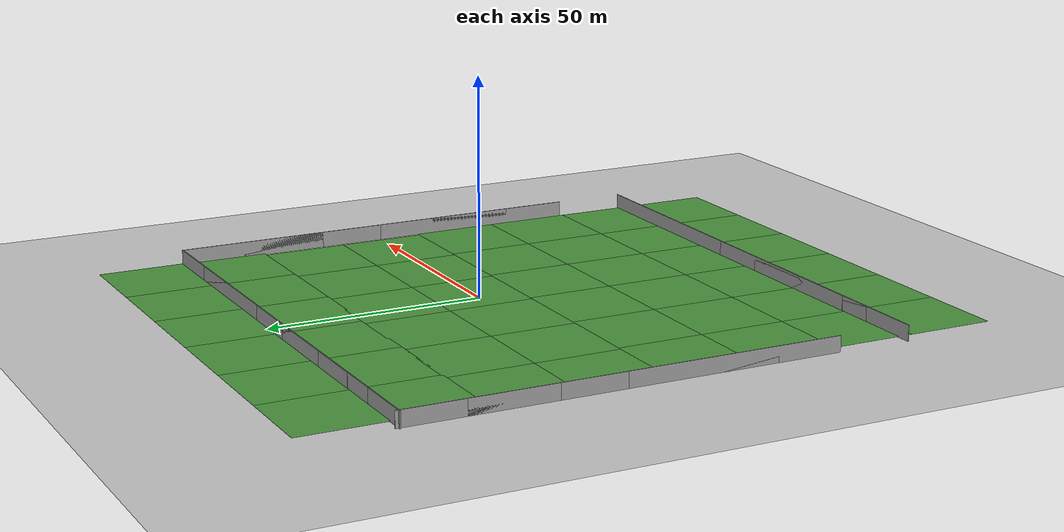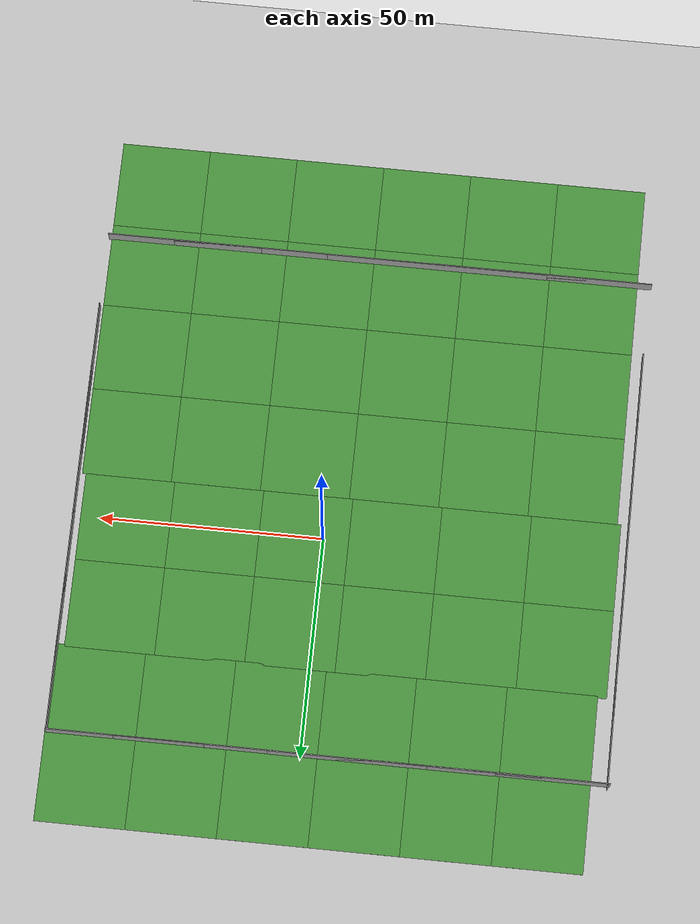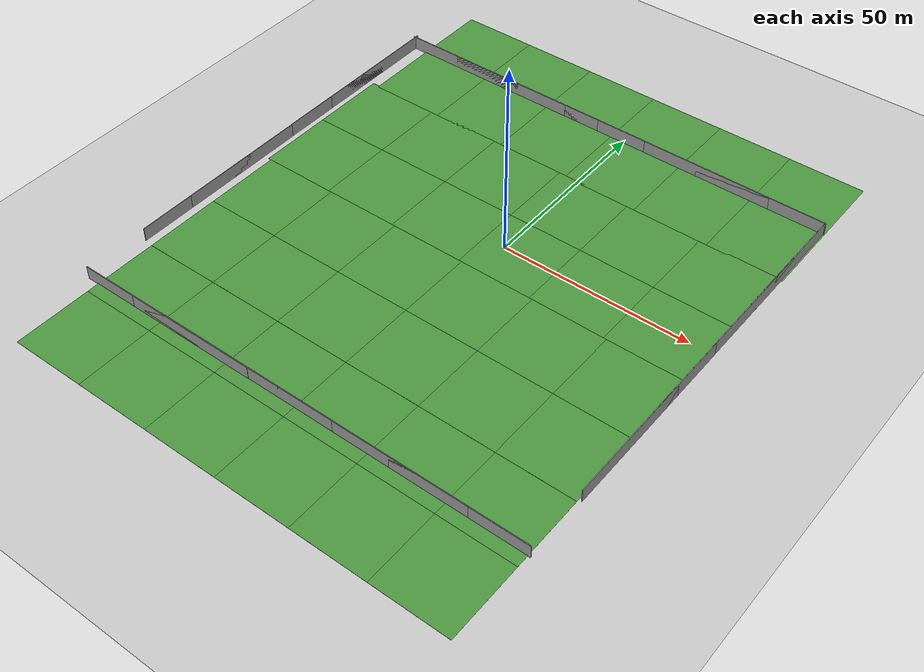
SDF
<sdf version="1.7">
 <world name="default">
  <plugin name="ros_interface_plugin" filename="librotors_gazebo_ros_interface_plugin.so"/>
  <light name="sun" type="directional">
   <pose>0 0 10 0 -0 0</pose>
   <diffuse>0.8 0.8 0.8 1</diffuse>
   <specular>0.2 0.2 0.2 1</specular>
   <attenuation>
    <range>1000</range>
    <constant>0.9</constant>
    <linear>0.01</linear>
    <quadratic>0.001</quadratic>
   </attenuation>
   <direction>-0.5 0.1 -0.9</direction>
   <spot><inner_angle>0</inner_angle><outer_angle>0</outer_angle><falloff>0</falloff></spot>
  </light>
  <model name="ground_plane">
   <static>1</static>
   <link name="link">
    <collision name="collision">
     <geometry><plane><normal>0 0 1</normal><size>100 100</size></plane></geometry>
     <surface><friction><ode><mu>100</mu><mu2>50</mu2></ode></friction></surface>
    </collision>
    <visual name="visual">
     <cast_shadows>0</cast_shadows>
     <geometry><plane><normal>0 0 1</normal><size>100 100</size></plane></geometry>
     <material>
      <script><uri>file://media/materials/scripts/gazebo.material</uri><name>Gazebo/Grey</name></script>
     </material>
    </visual>
    <velocity_decay><linear>0</linear><angular>0</angular></velocity_decay>
   </link>
  </model>
  <physics name="default_physics" default="0" type="ode">
   <max_step_size>0.001</max_step_size>
   <real_time_factor>1</real_time_factor>
   <real_time_update_rate>1000</real_time_update_rate>
  </physics>
  <scene><ambient>0.4 0.4 0.4 1</ambient><background>0.7 0.7 0.7 1</background><shadows>1</shadows></scene>
  <gravity>0 0 -9.8</gravity>
  <magnetic_field>6e-06 2.3e-05 -4.2e-05</magnetic_field>
  <atmosphere type="adiabatic"/>
  <spherical_coordinates>
   <surface_model>EARTH_WGS84</surface_model>
   <latitude_deg>0</latitude_deg>
   <longitude_deg>0</longitude_deg>
   <elevation>0</elevation>
   <heading_deg>0</heading_deg>
  </spherical_coordinates>
  <model name="wall">
   <link name="link">
    <pose>0 0 1.4 0 -0 0</pose>
    <inertial>
     <mass>1</mass>
     <inertia><ixx>1</ixx><ixy>0</ixy><ixz>0</ixz><iyy>1</iyy><iyz>0</iyz><izz>1</izz></inertia>
    </inertial>
    <visual name="ModelPreview_1::link::visual_1">
     <cast_shadows>0</cast_shadows>
     <geometry><box><size>20 0.2 4</size></box></geometry>
     <material>
      <script>
       <uri>model://grey_wall/materials/scripts</uri>
       <uri>model://grey_wall/materials/textures</uri>
       <name>vrc/grey_wall</name>
      </script>
      <ambient>1 1 1 1</ambient>
      <diffuse>1 1 1 1</diffuse>
      <specular>0 0 0 1</specular>
      <emissive>0 0 0 1</emissive>
      <shader type="vertex"><normal_map>__default__</normal_map></shader>
     </material>
    </visual>
    <visual name="visual">
     <cast_shadows>0</cast_shadows>
     <geometry><box><size>50 0.2 4</size></box></geometry>
     <material>
      <script>
       <uri>model://grey_wall/materials/scripts</uri>
       <uri>model://grey_wall/materials/textures</uri>
       <name>vrc/grey_wall</name>
      </script>
      <ambient>1 1 1 1</ambient>
      <diffuse>1 1 1 1</diffuse>
      <specular>0 0 0 1</specular>
      <emissive>0 0 0 1</emissive>
      <shader type="vertex"><normal_map>__default__</normal_map></shader>
     </material>
    </visual>
    <collision name="collision">
     <geometry><box><size>50 0.2 4</size></box></geometry>
     <surface>
      <friction>
       <ode><mu>1</mu><mu2>1</mu2><fdir1>0 0 0</fdir1><slip1>0</slip1><slip2>0</slip2></ode>
       <torsional>
        <coefficient>1</coefficient>
        <patch_radius>0</patch_radius>
        <surface_radius>0</surface_radius>
        <use_patch_radius>1</use_patch_radius>
        <ode><slip>0</slip></ode>
       </torsional>
      </friction>
      <bounce><restitution_coefficient>0</restitution_coefficient><threshold>1e+06</threshold></bounce>
      <contact>
       <collide_without_contact>0</collide_without_contact>
       <collide_without_contact_bitmask>1</collide_without_contact_bitmask>
       <collide_bitmask>1</collide_bitmask>
       <ode>
        <soft_cfm>0</soft_cfm>
        <soft_erp>0.2</soft_erp>
        <kp>1e+13</kp>
        <kd>1</kd>
        <max_vel>0.01</max_vel>
        <min_depth>0</min_depth>
       </ode>
       <bullet>
        <split_impulse>1</split_impulse>
        <split_impulse_penetration_threshold>-0.01</split_impulse_penetration_threshold>
        <soft_cfm>0</soft_cfm>
        <soft_erp>0.2</soft_erp>
        <kp>1e+13</kp>
        <kd>1</kd>
       </bullet>
      </contact>
     </surface>
    </collision>
   </link>
   <static>1</static>
   <pose>-19.1389 -66.0465 0 0 -0 0</pose>
  </model>
  <model name="wall_clone">
   <link name="link">
    <pose>0 0 1.4 0 -0 0</pose>
    <inertial>
     <mass>1</mass>
     <inertia><ixx>1</ixx><ixy>0</ixy><ixz>0</ixz><iyy>1</iyy><iyz>0</iyz><izz>1</izz></inertia>
    </inertial>
    <visual name="ModelPreview_1::link::visual_1">
     <cast_shadows>0</cast_shadows>
     <geometry><box><size>20 0.2 4</size></box></geometry>
     <material>
      <script>
       <uri>model://grey_wall/materials/scripts</uri>
       <uri>model://grey_wall/materials/textures</uri>
       <name>vrc/grey_wall</name>
      </script>
      <ambient>1 1 1 1</ambient>
      <diffuse>1 1 1 1</diffuse>
      <specular>0 0 0 1</specular>
      <emissive>0 0 0 1</emissive>
      <shader type="vertex"><normal_map>__default__</normal_map></shader>
     </material>
    </visual>
    <visual name="visual">
     <cast_shadows>0</cast_shadows>
     <geometry><box><size>50 0.2 4</size></box></geometry>
     <material>
      <script>
       <uri>model://grey_wall/materials/scripts</uri>
       <uri>model://grey_wall/materials/textures</uri>
       <name>vrc/grey_wall</name>
      </script>
      <ambient>1 1 1 1</ambient>
      <diffuse>1 1 1 1</diffuse>
      <specular>0 0 0 1</specular>
      <emissive>0 0 0 1</emissive>
      <shader type="vertex"><normal_map>__default__</normal_map></shader>
     </material>
    </visual>
    <collision name="collision">
     <geometry><box><size>50 0.2 4</size></box></geometry>
     <surface>
      <friction>
       <ode><mu>1</mu><mu2>1</mu2><fdir1>0 0 0</fdir1><slip1>0</slip1><slip2>0</slip2></ode>
       <torsional>
        <coefficient>1</coefficient>
        <patch_radius>0</patch_radius>
        <surface_radius>0</surface_radius>
        <use_patch_radius>1</use_patch_radius>
        <ode><slip>0</slip></ode>
       </torsional>
      </friction>
      <bounce><restitution_coefficient>0</restitution_coefficient><threshold>1e+06</threshold></bounce>
      <contact>
       <collide_without_contact>0</collide_without_contact>
       <collide_without_contact_bitmask>1</collide_without_contact_bitmask>
       <collide_bitmask>1</collide_bitmask>
       <ode>
        <soft_cfm>0</soft_cfm>
        <soft_erp>0.2</soft_erp>
        <kp>1e+13</kp>
        <kd>1</kd>
        <max_vel>0.01</max_vel>
        <min_depth>0</min_depth>
       </ode>
       <bullet>
        <split_impulse>1</split_impulse>
        <split_impulse_penetration_threshold>-0.01</split_impulse_penetration_threshold>
        <soft_cfm>0</soft_cfm>
        <soft_erp>0.2</soft_erp>
        <kp>1e+13</kp>
        <kd>1</kd>
       </bullet>
      </contact>
     </surface>
    </collision>
   </link>
   <static>1</static>
   <pose>-42.9816 -66.1254 0 0 -0 0</pose>
  </model>
  <model name="wall_clone_0">
   <link name="link">
    <pose>0 0 1.4 0 -0 0</pose>
    <inertial>
     <mass>1</mass>
     <inertia><ixx>1</ixx><ixy>0</ixy><ixz>0</ixz><iyy>1</iyy><iyz>0</iyz><izz>1</izz></inertia>
    </inertial>
    <visual name="ModelPreview_1::link::visual_1">
     <cast_shadows>0</cast_shadows>
     <geometry><box><size>20 0.2 4</size></box></geometry>
     <material>
      <script>
       <uri>model://grey_wall/materials/scripts</uri>
       <uri>model://grey_wall/materials/textures</uri>
       <name>vrc/grey_wall</name>
      </script>
      <ambient>1 1 1 1</ambient>
      <diffuse>1 1 1 1</diffuse>
      <specular>0 0 0 1</specular>
      <emissive>0 0 0 1</emissive>
      <shader type="vertex"><normal_map>__default__</normal_map></shader>
     </material>
    </visual>
    <visual name="visual">
     <cast_shadows>0</cast_shadows>
     <geometry><box><size>50 0.2 4</size></box></geometry>
     <material>
      <script>
       <uri>model://grey_wall/materials/scripts</uri>
       <uri>model://grey_wall/materials/textures</uri>
       <name>vrc/grey_wall</name>
      </script>
      <ambient>1 1 1 1</ambient>
      <diffuse>1 1 1 1</diffuse>
      <specular>0 0 0 1</specular>
      <emissive>0 0 0 1</emissive>
      <shader type="vertex"><normal_map>__default__</normal_map></shader>
     </material>
    </visual>
    <collision name="collision">
     <geometry><box><size>50 0.2 4</size></box></geometry>
     <surface>
      <friction>
       <ode><mu>1</mu><mu2>1</mu2><fdir1>0 0 0</fdir1><slip1>0</slip1><slip2>0</slip2></ode>
       <torsional>
        <coefficient>1</coefficient>
        <patch_radius>0</patch_radius>
        <surface_radius>0</surface_radius>
        <use_patch_radius>1</use_patch_radius>
        <ode><slip>0</slip></ode>
       </torsional>
      </friction>
      <bounce><restitution_coefficient>0</restitution_coefficient><threshold>1e+06</threshold></bounce>
      <contact>
       <collide_without_contact>0</collide_without_contact>
       <collide_without_contact_bitmask>1</collide_without_contact_bitmask>
       <collide_bitmask>1</collide_bitmask>
       <ode>
        <soft_cfm>0</soft_cfm>
        <soft_erp>0.2</soft_erp>
        <kp>1e+13</kp>
        <kd>1</kd>
        <max_vel>0.01</max_vel>
        <min_depth>0</min_depth>
       </ode>
       <bullet>
        <split_impulse>1</split_impulse>
        <split_impulse_penetration_threshold>-0.01</split_impulse_penetration_threshold>
        <soft_cfm>0</soft_cfm>
        <soft_erp>0.2</soft_erp>
        <kp>1e+13</kp>
        <kd>1</kd>
       </bullet>
      </contact>
     </surface>
    </collision>
   </link>
   <static>1</static>
   <pose>30.7671 -66.0696 0 0 -0 0</pose>
  </model>
  <model name="wall_clone_0_clone">
   <link name="link">
    <pose>0 0 1.4 0 -0 0</pose>
    <inertial>
     <mass>1</mass>
     <inertia><ixx>1</ixx><ixy>0</ixy><ixz>0</ixz><iyy>1</iyy><iyz>0</iyz><izz>1</izz></inertia>
    </inertial>
    <visual name="ModelPreview_1::link::visual_1">
     <cast_shadows>0</cast_shadows>
     <geometry><box><size>20 0.2 4</size></box></geometry>
     <material>
      <script>
       <uri>model://grey_wall/materials/scripts</uri>
       <uri>model://grey_wall/materials/textures</uri>
       <name>vrc/grey_wall</name>
      </script>
      <ambient>1 1 1 1</ambient>
      <diffuse>1 1 1 1</diffuse>
      <specular>0 0 0 1</specular>
      <emissive>0 0 0 1</emissive>
      <shader type="vertex"><normal_map>__default__</normal_map></shader>
     </material>
    </visual>
    <visual name="visual">
     <cast_shadows>0</cast_shadows>
     <geometry><box><size>50 0.2 4</size></box></geometry>
     <material>
      <script>
       <uri>model://grey_wall/materials/scripts</uri>
       <uri>model://grey_wall/materials/textures</uri>
       <name>vrc/grey_wall</name>
      </script>
      <ambient>1 1 1 1</ambient>
      <diffuse>1 1 1 1</diffuse>
      <specular>0 0 0 1</specular>
      <emissive>0 0 0 1</emissive>
      <shader type="vertex"><normal_map>__default__</normal_map></shader>
     </material>
    </visual>
    <collision name="collision">
     <geometry><box><size>50 0.2 4</size></box></geometry>
     <surface>
      <friction>
       <ode><mu>1</mu><mu2>1</mu2><fdir1>0 0 0</fdir1><slip1>0</slip1><slip2>0</slip2></ode>
       <torsional>
        <coefficient>1</coefficient>
        <patch_radius>0</patch_radius>
        <surface_radius>0</surface_radius>
        <use_patch_radius>1</use_patch_radius>
        <ode><slip>0</slip></ode>
       </torsional>
      </friction>
      <bounce><restitution_coefficient>0</restitution_coefficient><threshold>1e+06</threshold></bounce>
      <contact>
       <collide_without_contact>0</collide_without_contact>
       <collide_without_contact_bitmask>1</collide_without_contact_bitmask>
       <collide_bitmask>1</collide_bitmask>
       <ode>
        <soft_cfm>0</soft_cfm>
        <soft_erp>0.2</soft_erp>
        <kp>1e+13</kp>
        <kd>1</kd>
        <max_vel>0.01</max_vel>
        <min_depth>0</min_depth>
       </ode>
       <bullet>
        <split_impulse>1</split_impulse>
        <split_impulse_penetration_threshold>-0.01</split_impulse_penetration_threshold>
        <soft_cfm>0</soft_cfm>
        <soft_erp>0.2</soft_erp>
        <kp>1e+13</kp>
        <kd>1</kd>
       </bullet>
      </contact>
     </surface>
    </collision>
   </link>
   <static>1</static>
   <pose>55.8293 -24.385 0 0 -0 1.57</pose>
  </model>
  <model name="wall_clone_0_clone_clone">
   <link name="link">
    <pose>0 0 1.4 0 -0 0</pose>
    <inertial>
     <mass>1</mass>
     <inertia><ixx>1</ixx><ixy>0</ixy><ixz>0</ixz><iyy>1</iyy><iyz>0</iyz><izz>1</izz></inertia>
    </inertial>
    <visual name="ModelPreview_1::link::visual_1">
     <cast_shadows>0</cast_shadows>
     <geometry><box><size>20 0.2 4</size></box></geometry>
     <material>
      <script>
       <uri>model://grey_wall/materials/scripts</uri>
       <uri>model://grey_wall/materials/textures</uri>
       <name>vrc/grey_wall</name>
      </script>
      <ambient>1 1 1 1</ambient>
      <diffuse>1 1 1 1</diffuse>
      <specular>0 0 0 1</specular>
      <emissive>0 0 0 1</emissive>
      <shader type="vertex"><normal_map>__default__</normal_map></shader>
     </material>
    </visual>
    <visual name="visual">
     <cast_shadows>0</cast_shadows>
     <geometry><box><size>50 0.2 4</size></box></geometry>
     <material>
      <script>
       <uri>model://grey_wall/materials/scripts</uri>
       <uri>model://grey_wall/materials/textures</uri>
       <name>vrc/grey_wall</name>
      </script>
      <ambient>1 1 1 1</ambient>
      <diffuse>1 1 1 1</diffuse>
      <specular>0 0 0 1</specular>
      <emissive>0 0 0 1</emissive>
      <shader type="vertex"><normal_map>__default__</normal_map></shader>
     </material>
    </visual>
    <collision name="collision">
     <geometry><box><size>50 0.2 4</size></box></geometry>
     <surface>
      <friction>
       <ode><mu>1</mu><mu2>1</mu2><fdir1>0 0 0</fdir1><slip1>0</slip1><slip2>0</slip2></ode>
       <torsional>
        <coefficient>1</coefficient>
        <patch_radius>0</patch_radius>
        <surface_radius>0</surface_radius>
        <use_patch_radius>1</use_patch_radius>
        <ode><slip>0</slip></ode>
       </torsional>
      </friction>
      <bounce><restitution_coefficient>0</restitution_coefficient><threshold>1e+06</threshold></bounce>
      <contact>
       <collide_without_contact>0</collide_without_contact>
       <collide_without_contact_bitmask>1</collide_without_contact_bitmask>
       <collide_bitmask>1</collide_bitmask>
       <ode>
        <soft_cfm>0</soft_cfm>
        <soft_erp>0.2</soft_erp>
        <kp>1e+13</kp>
        <kd>1</kd>
        <max_vel>0.01</max_vel>
        <min_depth>0</min_depth>
       </ode>
       <bullet>
        <split_impulse>1</split_impulse>
        <split_impulse_penetration_threshold>-0.01</split_impulse_penetration_threshold>
        <soft_cfm>0</soft_cfm>
        <soft_erp>0.2</soft_erp>
        <kp>1e+13</kp>
        <kd>1</kd>
       </bullet>
      </contact>
     </surface>
    </collision>
   </link>
   <static>1</static>
   <pose>55.8454 24.5096 0 0 -0 1.57</pose>
  </model>
  <model name="wall_clone_0_clone_clone_0">
   <link name="link">
    <pose>0 0 1.4 0 -0 0</pose>
    <inertial>
     <mass>1</mass>
     <inertia><ixx>1</ixx><ixy>0</ixy><ixz>0</ixz><iyy>1</iyy><iyz>0</iyz><izz>1</izz></inertia>
    </inertial>
    <visual name="ModelPreview_1::link::visual_1">
     <cast_shadows>0</cast_shadows>
     <geometry><box><size>20 0.2 4</size></box></geometry>
     <material>
      <script>
       <uri>model://grey_wall/materials/scripts</uri>
       <uri>model://grey_wall/materials/textures</uri>
       <name>vrc/grey_wall</name>
      </script>
      <ambient>1 1 1 1</ambient>
      <diffuse>1 1 1 1</diffuse>
      <specular>0 0 0 1</specular>
      <emissive>0 0 0 1</emissive>
      <shader type="vertex"><normal_map>__default__</normal_map></shader>
     </material>
    </visual>
    <visual name="visual">
     <cast_shadows>0</cast_shadows>
     <geometry><box><size>50 0.2 4</size></box></geometry>
     <material>
      <script>
       <uri>model://grey_wall/materials/scripts</uri>
       <uri>model://grey_wall/materials/textures</uri>
       <name>vrc/grey_wall</name>
      </script>
      <ambient>1 1 1 1</ambient>
      <diffuse>1 1 1 1</diffuse>
      <specular>0 0 0 1</specular>
      <emissive>0 0 0 1</emissive>
      <shader type="vertex"><normal_map>__default__</normal_map></shader>
     </material>
    </visual>
    <collision name="collision">
     <geometry><box><size>50 0.2 4</size></box></geometry>
     <surface>
      <friction>
       <ode><mu>1</mu><mu2>1</mu2><fdir1>0 0 0</fdir1><slip1>0</slip1><slip2>0</slip2></ode>
       <torsional>
        <coefficient>1</coefficient>
        <patch_radius>0</patch_radius>
        <surface_radius>0</surface_radius>
        <use_patch_radius>1</use_patch_radius>
        <ode><slip>0</slip></ode>
       </torsional>
      </friction>
      <bounce><restitution_coefficient>0</restitution_coefficient><threshold>1e+06</threshold></bounce>
      <contact>
       <collide_without_contact>0</collide_without_contact>
       <collide_without_contact_bitmask>1</collide_without_contact_bitmask>
       <collide_bitmask>1</collide_bitmask>
       <ode>
        <soft_cfm>0</soft_cfm>
        <soft_erp>0.2</soft_erp>
        <kp>1e+13</kp>
        <kd>1</kd>
        <max_vel>0.01</max_vel>
        <min_depth>0</min_depth>
       </ode>
       <bullet>
        <split_impulse>1</split_impulse>
        <split_impulse_penetration_threshold>-0.01</split_impulse_penetration_threshold>
        <soft_cfm>0</soft_cfm>
        <soft_erp>0.2</soft_erp>
        <kp>1e+13</kp>
        <kd>1</kd>
       </bullet>
      </contact>
     </surface>
    </collision>
   </link>
   <static>1</static>
   <pose>-67.2984 -24.5457 0 0 -0 1.57</pose>
  </model>
  <model name="wall_clone_0_clone_clone_1">
   <link name="link">
    <pose>0 0 1.4 0 -0 0</pose>
    <inertial>
     <mass>1</mass>
     <inertia><ixx>1</ixx><ixy>0</ixy><ixz>0</ixz><iyy>1</iyy><iyz>0</iyz><izz>1</izz></inertia>
    </inertial>
    <visual name="ModelPreview_1::link::visual_1">
     <cast_shadows>0</cast_shadows>
     <geometry><box><size>20 0.2 4</size></box></geometry>
     <material>
      <script>
       <uri>model://grey_wall/materials/scripts</uri>
       <uri>model://grey_wall/materials/textures</uri>
       <name>vrc/grey_wall</name>
      </script>
      <ambient>1 1 1 1</ambient>
      <diffuse>1 1 1 1</diffuse>
      <specular>0 0 0 1</specular>
      <emissive>0 0 0 1</emissive>
      <shader type="vertex"><normal_map>__default__</normal_map></shader>
     </material>
    </visual>
    <visual name="visual">
     <cast_shadows>0</cast_shadows>
     <geometry><box><size>50 0.2 4</size></box></geometry>
     <material>
      <script>
       <uri>model://grey_wall/materials/scripts</uri>
       <uri>model://grey_wall/materials/textures</uri>
       <name>vrc/grey_wall</name>
      </script>
      <ambient>1 1 1 1</ambient>
      <diffuse>1 1 1 1</diffuse>
      <specular>0 0 0 1</specular>
      <emissive>0 0 0 1</emissive>
      <shader type="vertex"><normal_map>__default__</normal_map></shader>
     </material>
    </visual>
    <collision name="collision">
     <geometry><box><size>50 0.2 4</size></box></geometry>
     <surface>
      <friction>
       <ode><mu>1</mu><mu2>1</mu2><fdir1>0 0 0</fdir1><slip1>0</slip1><slip2>0</slip2></ode>
       <torsional>
        <coefficient>1</coefficient>
        <patch_radius>0</patch_radius>
        <surface_radius>0</surface_radius>
        <use_patch_radius>1</use_patch_radius>
        <ode><slip>0</slip></ode>
       </torsional>
      </friction>
      <bounce><restitution_coefficient>0</restitution_coefficient><threshold>1e+06</threshold></bounce>
      <contact>
       <collide_without_contact>0</collide_without_contact>
       <collide_without_contact_bitmask>1</collide_without_contact_bitmask>
       <collide_bitmask>1</collide_bitmask>
       <ode>
        <soft_cfm>0</soft_cfm>
        <soft_erp>0.2</soft_erp>
        <kp>1e+13</kp>
        <kd>1</kd>
        <max_vel>0.01</max_vel>
        <min_depth>0</min_depth>
       </ode>
       <bullet>
        <split_impulse>1</split_impulse>
        <split_impulse_penetration_threshold>-0.01</split_impulse_penetration_threshold>
        <soft_cfm>0</soft_cfm>
        <soft_erp>0.2</soft_erp>
        <kp>1e+13</kp>
        <kd>1</kd>
       </bullet>
      </contact>
     </surface>
    </collision>
   </link>
   <static>1</static>
   <pose>-67.3084 25.3151 0 0 -0 1.57</pose>
  </model>
  <model name="wall_clone_0_clone_0">
   <link name="link">
    <pose>0 0 1.4 0 -0 0</pose>
    <inertial>
     <mass>1</mass>
     <inertia><ixx>1</ixx><ixy>0</ixy><ixz>0</ixz><iyy>1</iyy><iyz>0</iyz><izz>1</izz></inertia>
    </inertial>
    <visual name="ModelPreview_1::link::visual_1">
     <cast_shadows>0</cast_shadows>
     <geometry><box><size>20 0.2 4</size></box></geometry>
     <material>
      <script>
       <uri>model://grey_wall/materials/scripts</uri>
       <uri>model://grey_wall/materials/textures</uri>
       <name>vrc/grey_wall</name>
      </script>
      <ambient>1 1 1 1</ambient>
      <diffuse>1 1 1 1</diffuse>
      <specular>0 0 0 1</specular>
      <emissive>0 0 0 1</emissive>
      <shader type="vertex"><normal_map>__default__</normal_map></shader>
     </material>
    </visual>
    <visual name="visual">
     <cast_shadows>0</cast_shadows>
     <geometry><box><size>50 0.2 4</size></box></geometry>
     <material>
      <script>
       <uri>model://grey_wall/materials/scripts</uri>
       <uri>model://grey_wall/materials/textures</uri>
       <name>vrc/grey_wall</name>
      </script>
      <ambient>1 1 1 1</ambient>
      <diffuse>1 1 1 1</diffuse>
      <specular>0 0 0 1</specular>
      <emissive>0 0 0 1</emissive>
      <shader type="vertex"><normal_map>__default__</normal_map></shader>
     </material>
    </visual>
    <collision name="collision">
     <geometry><box><size>50 0.2 4</size></box></geometry>
     <surface>
      <friction>
       <ode><mu>1</mu><mu2>1</mu2><fdir1>0 0 0</fdir1><slip1>0</slip1><slip2>0</slip2></ode>
       <torsional>
        <coefficient>1</coefficient>
        <patch_radius>0</patch_radius>
        <surface_radius>0</surface_radius>
        <use_patch_radius>1</use_patch_radius>
        <ode><slip>0</slip></ode>
       </torsional>
      </friction>
      <bounce><restitution_coefficient>0</restitution_coefficient><threshold>1e+06</threshold></bounce>
      <contact>
       <collide_without_contact>0</collide_without_contact>
       <collide_without_contact_bitmask>1</collide_without_contact_bitmask>
       <collide_bitmask>1</collide_bitmask>
       <ode>
        <soft_cfm>0</soft_cfm>
        <soft_erp>0.2</soft_erp>
        <kp>1e+13</kp>
        <kd>1</kd>
        <max_vel>0.01</max_vel>
        <min_depth>0</min_depth>
       </ode>
       <bullet>
        <split_impulse>1</split_impulse>
        <split_impulse_penetration_threshold>-0.01</split_impulse_penetration_threshold>
        <soft_cfm>0</soft_cfm>
        <soft_erp>0.2</soft_erp>
        <kp>1e+13</kp>
        <kd>1</kd>
       </bullet>
      </contact>
     </surface>
    </collision>
   </link>
   <static>1</static>
   <pose>31.1336 49.4754 0 0 -0 0</pose>
  </model>
  <model name="wall_clone_0_clone_1">
   <link name="link">
    <pose>0 0 1.4 0 -0 0</pose>
    <inertial>
     <mass>1</mass>
     <inertia><ixx>1</ixx><ixy>0</ixy><ixz>0</ixz><iyy>1</iyy><iyz>0</iyz><izz>1</izz></inertia>
    </inertial>
    <visual name="ModelPreview_1::link::visual_1">
     <cast_shadows>0</cast_shadows>
     <geometry><box><size>20 0.2 4</size></box></geometry>
     <material>
      <script>
       <uri>model://grey_wall/materials/scripts</uri>
       <uri>model://grey_wall/materials/textures</uri>
       <name>vrc/grey_wall</name>
      </script>
      <ambient>1 1 1 1</ambient>
      <diffuse>1 1 1 1</diffuse>
      <specular>0 0 0 1</specular>
      <emissive>0 0 0 1</emissive>
      <shader type="vertex"><normal_map>__default__</normal_map></shader>
     </material>
    </visual>
    <visual name="visual">
     <cast_shadows>0</cast_shadows>
     <geometry><box><size>50 0.2 4</size></box></geometry>
     <material>
      <script>
       <uri>model://grey_wall/materials/scripts</uri>
       <uri>model://grey_wall/materials/textures</uri>
       <name>vrc/grey_wall</name>
      </script>
      <ambient>1 1 1 1</ambient>
      <diffuse>1 1 1 1</diffuse>
      <specular>0 0 0 1</specular>
      <emissive>0 0 0 1</emissive>
      <shader type="vertex"><normal_map>__default__</normal_map></shader>
     </material>
    </visual>
    <collision name="collision">
     <geometry><box><size>50 0.2 4</size></box></geometry>
     <surface>
      <friction>
       <ode><mu>1</mu><mu2>1</mu2><fdir1>0 0 0</fdir1><slip1>0</slip1><slip2>0</slip2></ode>
       <torsional>
        <coefficient>1</coefficient>
        <patch_radius>0</patch_radius>
        <surface_radius>0</surface_radius>
        <use_patch_radius>1</use_patch_radius>
        <ode><slip>0</slip></ode>
       </torsional>
      </friction>
      <bounce><restitution_coefficient>0</restitution_coefficient><threshold>1e+06</threshold></bounce>
      <contact>
       <collide_without_contact>0</collide_without_contact>
       <collide_without_contact_bitmask>1</collide_without_contact_bitmask>
       <collide_bitmask>1</collide_bitmask>
       <ode>
        <soft_cfm>0</soft_cfm>
        <soft_erp>0.2</soft_erp>
        <kp>1e+13</kp>
        <kd>1</kd>
        <max_vel>0.01</max_vel>
        <min_depth>0</min_depth>
       </ode>
       <bullet>
        <split_impulse>1</split_impulse>
        <split_impulse_penetration_threshold>-0.01</split_impulse_penetration_threshold>
        <soft_cfm>0</soft_cfm>
        <soft_erp>0.2</soft_erp>
        <kp>1e+13</kp>
        <kd>1</kd>
       </bullet>
      </contact>
     </surface>
    </collision>
   </link>
   <static>1</static>
   <pose>-17.7944 49.5119 0 0 -0 0</pose>
  </model>
  <model name="wall_clone_0_clone_2">
   <link name="link">
    <pose>0 0 1.4 0 -0 0</pose>
    <inertial>
     <mass>1</mass>
     <inertia><ixx>1</ixx><ixy>0</ixy><ixz>0</ixz><iyy>1</iyy><iyz>0</iyz><izz>1</izz></inertia>
    </inertial>
    <visual name="ModelPreview_1::link::visual_1">
     <cast_shadows>0</cast_shadows>
     <geometry><box><size>20 0.2 4</size></box></geometry>
     <material>
      <script>
       <uri>model://grey_wall/materials/scripts</uri>
       <uri>model://grey_wall/materials/textures</uri>
       <name>vrc/grey_wall</name>
      </script>
      <ambient>1 1 1 1</ambient>
      <diffuse>1 1 1 1</diffuse>
      <specular>0 0 0 1</specular>
      <emissive>0 0 0 1</emissive>
      <shader type="vertex"><normal_map>__default__</normal_map></shader>
     </material>
    </visual>
    <visual name="visual">
     <cast_shadows>0</cast_shadows>
     <geometry><box><size>50 0.2 4</size></box></geometry>
     <material>
      <script>
       <uri>model://grey_wall/materials/scripts</uri>
       <uri>model://grey_wall/materials/textures</uri>
       <name>vrc/grey_wall</name>
      </script>
      <ambient>1 1 1 1</ambient>
      <diffuse>1 1 1 1</diffuse>
      <specular>0 0 0 1</specular>
      <emissive>0 0 0 1</emissive>
      <shader type="vertex"><normal_map>__default__</normal_map></shader>
     </material>
    </visual>
    <collision name="collision">
     <geometry><box><size>50 0.2 4</size></box></geometry>
     <surface>
      <friction>
       <ode><mu>1</mu><mu2>1</mu2><fdir1>0 0 0</fdir1><slip1>0</slip1><slip2>0</slip2></ode>
       <torsional>
        <coefficient>1</coefficient>
        <patch_radius>0</patch_radius>
        <surface_radius>0</surface_radius>
        <use_patch_radius>1</use_patch_radius>
        <ode><slip>0</slip></ode>
       </torsional>
      </friction>
      <bounce><restitution_coefficient>0</restitution_coefficient><threshold>1e+06</threshold></bounce>
      <contact>
       <collide_without_contact>0</collide_without_contact>
       <collide_without_contact_bitmask>1</collide_without_contact_bitmask>
       <collide_bitmask>1</collide_bitmask>
       <ode>
        <soft_cfm>0</soft_cfm>
        <soft_erp>0.2</soft_erp>
        <kp>1e+13</kp>
        <kd>1</kd>
        <max_vel>0.01</max_vel>
        <min_depth>0</min_depth>
       </ode>
       <bullet>
        <split_impulse>1</split_impulse>
        <split_impulse_penetration_threshold>-0.01</split_impulse_penetration_threshold>
        <soft_cfm>0</soft_cfm>
        <soft_erp>0.2</soft_erp>
        <kp>1e+13</kp>
        <kd>1</kd>
       </bullet>
      </contact>
     </surface>
    </collision>
   </link>
   <static>1</static>
   <pose>-42.8955 49.4635 0 0 -0 0</pose>
  </model>
  <model name="grass_plane">
   <static>1</static>
   <link name="link">
    <collision name="collision">
     <geometry><plane><normal>0 0 1</normal><size>500 500</size></plane></geometry>
     <surface><friction><ode><mu>0.5</mu><mu2>0.5</mu2></ode></friction></surface>
    </collision>
    <visual name="visual_0">
     <pose>-40 -40 0 0 -0 0</pose>
     <cast_shadows>0</cast_shadows>
     <geometry><plane><normal>0 0 1</normal><size>20 20</size></plane></geometry>
     <material>
      <script>
       <uri>model://grass_plane/materials/scripts</uri>
       <uri>model://grass_plane/materials/textures</uri>
       <name>vrc/grass</name>
      </script>
     </material>
    </visual>
    <visual name="visual_1">
     <pose>-20 -40 0 0 -0 0</pose>
     <cast_shadows>0</cast_shadows>
     <geometry><plane><normal>0 0 1</normal><size>20 20</size></plane></geometry>
     <material>
      <script>
       <uri>model://grass_plane/materials/scripts</uri>
       <uri>model://grass_plane/materials/textures</uri>
       <name>vrc/grass</name>
      </script>
     </material>
    </visual>
    <visual name="visual_2">
     <pose>0 -40 0 0 -0 0</pose>
     <cast_shadows>0</cast_shadows>
     <geometry><plane><normal>0 0 1</normal><size>20 20</size></plane></geometry>
     <material>
      <script>
       <uri>model://grass_plane/materials/scripts</uri>
       <uri>model://grass_plane/materials/textures</uri>
       <name>vrc/grass</name>
      </script>
     </material>
    </visual>
    <visual name="visual_3">
     <pose>20 -40 0 0 -0 0</pose>
     <cast_shadows>0</cast_shadows>
     <geometry><plane><normal>0 0 1</normal><size>20 20</size></plane></geometry>
     <material>
      <script>
       <uri>model://grass_plane/materials/scripts</uri>
       <uri>model://grass_plane/materials/textures</uri>
       <name>vrc/grass</name>
      </script>
     </material>
    </visual>
    <visual name="visual_4">
     <pose>40 -40 0 0 -0 0</pose>
     <cast_shadows>0</cast_shadows>
     <geometry><plane><normal>0 0 1</normal><size>20 20</size></plane></geometry>
     <material>
      <script>
       <uri>model://grass_plane/materials/scripts</uri>
       <uri>model://grass_plane/materials/textures</uri>
       <name>vrc/grass</name>
      </script>
     </material>
    </visual>
    <visual name="visual_5">
     <pose>60 -40 0 0 -0 0</pose>
     <cast_shadows>0</cast_shadows>
     <geometry><plane><normal>0 0 1</normal><size>20 20</size></plane></geometry>
     <material>
      <script>
       <uri>model://grass_plane/materials/scripts</uri>
       <uri>model://grass_plane/materials/textures</uri>
       <name>vrc/grass</name>
      </script>
     </material>
    </visual>
    <visual name="visual_6">
     <pose>-40 -20 0 0 -0 0</pose>
     <cast_shadows>0</cast_shadows>
     <geometry><plane><normal>0 0 1</normal><size>20 20</size></plane></geometry>
     <material>
      <script>
       <uri>model://grass_plane/materials/scripts</uri>
       <uri>model://grass_plane/materials/textures</uri>
       <name>vrc/grass</name>
      </script>
     </material>
    </visual>
    <visual name="visual_7">
     <pose>-20 -20 0 0 -0 0</pose>
     <cast_shadows>0</cast_shadows>
     <geometry><plane><normal>0 0 1</normal><size>20 20</size></plane></geometry>
     <material>
      <script>
       <uri>model://grass_plane/materials/scripts</uri>
       <uri>model://grass_plane/materials/textures</uri>
       <name>vrc/grass</name>
      </script>
     </material>
    </visual>
    <visual name="visual_8">
     <pose>0 -20 0 0 -0 0</pose>
     <cast_shadows>0</cast_shadows>
     <geometry><plane><normal>0 0 1</normal><size>20 20</size></plane></geometry>
     <material>
      <script>
       <uri>model://grass_plane/materials/scripts</uri>
       <uri>model://grass_plane/materials/textures</uri>
       <name>vrc/grass</name>
      </script>
     </material>
    </visual>
    <visual name="visual_9">
     <pose>20 -20 0 0 -0 0</pose>
     <cast_shadows>0</cast_shadows>
     <geometry><plane><normal>0 0 1</normal><size>20 20</size></plane></geometry>
     <material>
      <script>
       <uri>model://grass_plane/materials/scripts</uri>
       <uri>model://grass_plane/materials/textures</uri>
       <name>vrc/grass</name>
      </script>
     </material>
    </visual>
    <visual name="visual_10">
     <pose>40 -20 0 0 -0 0</pose>
     <cast_shadows>0</cast_shadows>
     <geometry><plane><normal>0 0 1</normal><size>20 20</size></plane></geometry>
     <material>
      <script>
       <uri>model://grass_plane/materials/scripts</uri>
       <uri>model://grass_plane/materials/textures</uri>
       <name>vrc/grass</name>
      </script>
     </material>
    </visual>
    <visual name="visual_11">
     <pose>60 -20 0 0 -0 0</pose>
     <cast_shadows>0</cast_shadows>
     <geometry><plane><normal>0 0 1</normal><size>20 20</size></plane></geometry>
     <material>
      <script>
       <uri>model://grass_plane/materials/scripts</uri>
       <uri>model://grass_plane/materials/textures</uri>
       <name>vrc/grass</name>
      </script>
     </material>
    </visual>
   </link>
   <pose>-14.8141 -0.024505 0.01 0 -0 0</pose>
  </model>
  <model name="grass_plane_0">
   <static>1</static>
   <link name="link">
    <collision name="collision">
     <geometry><plane><normal>0 0 1</normal><size>500 500</size></plane></geometry>
     <surface><friction><ode><mu>0.5</mu><mu2>0.5</mu2></ode></friction></surface>
    </collision>
    <visual name="visual_0">
     <pose>-40 -40 0 0 -0 0</pose>
     <cast_shadows>0</cast_shadows>
     <geometry><plane><normal>0 0 1</normal><size>20 20</size></plane></geometry>
     <material>
      <script>
       <uri>model://grass_plane/materials/scripts</uri>
       <uri>model://grass_plane/materials/textures</uri>
       <name>vrc/grass</name>
      </script>
     </material>
    </visual>
    <visual name="visual_1">
     <pose>-20 -40 0 0 -0 0</pose>
     <cast_shadows>0</cast_shadows>
     <geometry><plane><normal>0 0 1</normal><size>20 20</size></plane></geometry>
     <material>
      <script>
       <uri>model://grass_plane/materials/scripts</uri>
       <uri>model://grass_plane/materials/textures</uri>
       <name>vrc/grass</name>
      </script>
     </material>
    </visual>
    <visual name="visual_2">
     <pose>0 -40 0 0 -0 0</pose>
     <cast_shadows>0</cast_shadows>
     <geometry><plane><normal>0 0 1</normal><size>20 20</size></plane></geometry>
     <material>
      <script>
       <uri>model://grass_plane/materials/scripts</uri>
       <uri>model://grass_plane/materials/textures</uri>
       <name>vrc/grass</name>
      </script>
     </material>
    </visual>
    <visual name="visual_3">
     <pose>20 -40 0 0 -0 0</pose>
     <cast_shadows>0</cast_shadows>
     <geometry><plane><normal>0 0 1</normal><size>20 20</size></plane></geometry>
     <material>
      <script>
       <uri>model://grass_plane/materials/scripts</uri>
       <uri>model://grass_plane/materials/textures</uri>
       <name>vrc/grass</name>
      </script>
     </material>
    </visual>
    <visual name="visual_4">
     <pose>40 -40 0 0 -0 0</pose>
     <cast_shadows>0</cast_shadows>
     <geometry><plane><normal>0 0 1</normal><size>20 20</size></plane></geometry>
     <material>
      <script>
       <uri>model://grass_plane/materials/scripts</uri>
       <uri>model://grass_plane/materials/textures</uri>
       <name>vrc/grass</name>
      </script>
     </material>
    </visual>
    <visual name="visual_5">
     <pose>60 -40 0 0 -0 0</pose>
     <cast_shadows>0</cast_shadows>
     <geometry><plane><normal>0 0 1</normal><size>20 20</size></plane></geometry>
     <material>
      <script>
       <uri>model://grass_plane/materials/scripts</uri>
       <uri>model://grass_plane/materials/textures</uri>
       <name>vrc/grass</name>
      </script>
     </material>
    </visual>
    <visual name="visual_6">
     <pose>-40 -20 0 0 -0 0</pose>
     <cast_shadows>0</cast_shadows>
     <geometry><plane><normal>0 0 1</normal><size>20 20</size></plane></geometry>
     <material>
      <script>
       <uri>model://grass_plane/materials/scripts</uri>
       <uri>model://grass_plane/materials/textures</uri>
       <name>vrc/grass</name>
      </script>
     </material>
    </visual>
    <visual name="visual_7">
     <pose>-20 -20 0 0 -0 0</pose>
     <cast_shadows>0</cast_shadows>
     <geometry><plane><normal>0 0 1</normal><size>20 20</size></plane></geometry>
     <material>
      <script>
       <uri>model://grass_plane/materials/scripts</uri>
       <uri>model://grass_plane/materials/textures</uri>
       <name>vrc/grass</name>
      </script>
     </material>
    </visual>
    <visual name="visual_8">
     <pose>0 -20 0 0 -0 0</pose>
     <cast_shadows>0</cast_shadows>
     <geometry><plane><normal>0 0 1</normal><size>20 20</size></plane></geometry>
     <material>
      <script>
       <uri>model://grass_plane/materials/scripts</uri>
       <uri>model://grass_plane/materials/textures</uri>
       <name>vrc/grass</name>
      </script>
     </material>
    </visual>
    <visual name="visual_9">
     <pose>20 -20 0 0 -0 0</pose>
     <cast_shadows>0</cast_shadows>
     <geometry><plane><normal>0 0 1</normal><size>20 20</size></plane></geometry>
     <material>
      <script>
       <uri>model://grass_plane/materials/scripts</uri>
       <uri>model://grass_plane/materials/textures</uri>
       <name>vrc/grass</name>
      </script>
     </material>
    </visual>
    <visual name="visual_10">
     <pose>40 -20 0 0 -0 0</pose>
     <cast_shadows>0</cast_shadows>
     <geometry><plane><normal>0 0 1</normal><size>20 20</size></plane></geometry>
     <material>
      <script>
       <uri>model://grass_plane/materials/scripts</uri>
       <uri>model://grass_plane/materials/textures</uri>
       <name>vrc/grass</name>
      </script>
     </material>
    </visual>
    <visual name="visual_11">
     <pose>60 -20 0 0 -0 0</pose>
     <cast_shadows>0</cast_shadows>
     <geometry><plane><normal>0 0 1</normal><size>20 20</size></plane></geometry>
     <material>
      <script>
       <uri>model://grass_plane/materials/scripts</uri>
       <uri>model://grass_plane/materials/textures</uri>
       <name>vrc/grass</name>
      </script>
     </material>
    </visual>
   </link>
   <pose>-15.6244 39.9229 0.01 0 -0 0</pose>
  </model>
  <model name="grass_plane_1">
   <static>1</static>
   <link name="link">
    <collision name="collision">
     <geometry><plane><normal>0 0 1</normal><size>500 500</size></plane></geometry>
     <surface><friction><ode><mu>0.5</mu><mu2>0.5</mu2></ode></friction></surface>
    </collision>
    <visual name="visual_0">
     <pose>-40 -40 0 0 -0 0</pose>
     <cast_shadows>0</cast_shadows>
     <geometry><plane><normal>0 0 1</normal><size>20 20</size></plane></geometry>
     <material>
      <script>
       <uri>model://grass_plane/materials/scripts</uri>
       <uri>model://grass_plane/materials/textures</uri>
       <name>vrc/grass</name>
      </script>
     </material>
    </visual>
    <visual name="visual_1">
     <pose>-20 -40 0 0 -0 0</pose>
     <cast_shadows>0</cast_shadows>
     <geometry><plane><normal>0 0 1</normal><size>20 20</size></plane></geometry>
     <material>
      <script>
       <uri>model://grass_plane/materials/scripts</uri>
       <uri>model://grass_plane/materials/textures</uri>
       <name>vrc/grass</name>
      </script>
     </material>
    </visual>
    <visual name="visual_2">
     <pose>0 -40 0 0 -0 0</pose>
     <cast_shadows>0</cast_shadows>
     <geometry><plane><normal>0 0 1</normal><size>20 20</size></plane></geometry>
     <material>
      <script>
       <uri>model://grass_plane/materials/scripts</uri>
       <uri>model://grass_plane/materials/textures</uri>
       <name>vrc/grass</name>
      </script>
     </material>
    </visual>
    <visual name="visual_3">
     <pose>20 -40 0 0 -0 0</pose>
     <cast_shadows>0</cast_shadows>
     <geometry><plane><normal>0 0 1</normal><size>20 20</size></plane></geometry>
     <material>
      <script>
       <uri>model://grass_plane/materials/scripts</uri>
       <uri>model://grass_plane/materials/textures</uri>
       <name>vrc/grass</name>
      </script>
     </material>
    </visual>
    <visual name="visual_4">
     <pose>40 -40 0 0 -0 0</pose>
     <cast_shadows>0</cast_shadows>
     <geometry><plane><normal>0 0 1</normal><size>20 20</size></plane></geometry>
     <material>
      <script>
       <uri>model://grass_plane/materials/scripts</uri>
       <uri>model://grass_plane/materials/textures</uri>
       <name>vrc/grass</name>
      </script>
     </material>
    </visual>
    <visual name="visual_5">
     <pose>60 -40 0 0 -0 0</pose>
     <cast_shadows>0</cast_shadows>
     <geometry><plane><normal>0 0 1</normal><size>20 20</size></plane></geometry>
     <material>
      <script>
       <uri>model://grass_plane/materials/scripts</uri>
       <uri>model://grass_plane/materials/textures</uri>
       <name>vrc/grass</name>
      </script>
     </material>
    </visual>
    <visual name="visual_6">
     <pose>-40 -20 0 0 -0 0</pose>
     <cast_shadows>0</cast_shadows>
     <geometry><plane><normal>0 0 1</normal><size>20 20</size></plane></geometry>
     <material>
      <script>
       <uri>model://grass_plane/materials/scripts</uri>
       <uri>model://grass_plane/materials/textures</uri>
       <name>vrc/grass</name>
      </script>
     </material>
    </visual>
    <visual name="visual_7">
     <pose>-20 -20 0 0 -0 0</pose>
     <cast_shadows>0</cast_shadows>
     <geometry><plane><normal>0 0 1</normal><size>20 20</size></plane></geometry>
     <material>
      <script>
       <uri>model://grass_plane/materials/scripts</uri>
       <uri>model://grass_plane/materials/textures</uri>
       <name>vrc/grass</name>
      </script>
     </material>
    </visual>
    <visual name="visual_8">
     <pose>0 -20 0 0 -0 0</pose>
     <cast_shadows>0</cast_shadows>
     <geometry><plane><normal>0 0 1</normal><size>20 20</size></plane></geometry>
     <material>
      <script>
       <uri>model://grass_plane/materials/scripts</uri>
       <uri>model://grass_plane/materials/textures</uri>
       <name>vrc/grass</name>
      </script>
     </material>
    </visual>
    <visual name="visual_9">
     <pose>20 -20 0 0 -0 0</pose>
     <cast_shadows>0</cast_shadows>
     <geometry><plane><normal>0 0 1</normal><size>20 20</size></plane></geometry>
     <material>
      <script>
       <uri>model://grass_plane/materials/scripts</uri>
       <uri>model://grass_plane/materials/textures</uri>
       <name>vrc/grass</name>
      </script>
     </material>
    </visual>
    <visual name="visual_10">
     <pose>40 -20 0 0 -0 0</pose>
     <cast_shadows>0</cast_shadows>
     <geometry><plane><normal>0 0 1</normal><size>20 20</size></plane></geometry>
     <material>
      <script>
       <uri>model://grass_plane/materials/scripts</uri>
       <uri>model://grass_plane/materials/textures</uri>
       <name>vrc/grass</name>
      </script>
     </material>
    </visual>
    <visual name="visual_11">
     <pose>60 -20 0 0 -0 0</pose>
     <cast_shadows>0</cast_shadows>
     <geometry><plane><normal>0 0 1</normal><size>20 20</size></plane></geometry>
     <material>
      <script>
       <uri>model://grass_plane/materials/scripts</uri>
       <uri>model://grass_plane/materials/textures</uri>
       <name>vrc/grass</name>
      </script>
     </material>
    </visual>
   </link>
   <pose>-13.6804 79.4487 0.01 0 -0 0</pose>
  </model>
  <audio><device>default</device></audio>
  <model name="grass_plane_2">
   <static>1</static>
   <link name="link">
    <collision name="collision">
     <geometry><plane><normal>0 0 1</normal><size>500 500</size></plane></geometry>
     <surface><friction><ode><mu>0.5</mu><mu2>0.5</mu2></ode></friction></surface>
    </collision>
    <visual name="visual_0">
     <pose>-40 -40 0 0 -0 0</pose>
     <cast_shadows>0</cast_shadows>
     <geometry><plane><normal>0 0 1</normal><size>20 20</size></plane></geometry>
     <material>
      <script>
       <uri>model://grass_plane/materials/scripts</uri>
       <uri>model://grass_plane/materials/textures</uri>
       <name>vrc/grass</name>
      </script>
     </material>
    </visual>
    <visual name="visual_1">
     <pose>-20 -40 0 0 -0 0</pose>
     <cast_shadows>0</cast_shadows>
     <geometry><plane><normal>0 0 1</normal><size>20 20</size></plane></geometry>
     <material>
      <script>
       <uri>model://grass_plane/materials/scripts</uri>
       <uri>model://grass_plane/materials/textures</uri>
       <name>vrc/grass</name>
      </script>
     </material>
    </visual>
    <visual name="visual_2">
     <pose>0 -40 0 0 -0 0</pose>
     <cast_shadows>0</cast_shadows>
     <geometry><plane><normal>0 0 1</normal><size>20 20</size></plane></geometry>
     <material>
      <script>
       <uri>model://grass_plane/materials/scripts</uri>
       <uri>model://grass_plane/materials/textures</uri>
       <name>vrc/grass</name>
      </script>
     </material>
    </visual>
    <visual name="visual_3">
     <pose>20 -40 0 0 -0 0</pose>
     <cast_shadows>0</cast_shadows>
     <geometry><plane><normal>0 0 1</normal><size>20 20</size></plane></geometry>
     <material>
      <script>
       <uri>model://grass_plane/materials/scripts</uri>
       <uri>model://grass_plane/materials/textures</uri>
       <name>vrc/grass</name>
      </script>
     </material>
    </visual>
    <visual name="visual_4">
     <pose>40 -40 0 0 -0 0</pose>
     <cast_shadows>0</cast_shadows>
     <geometry><plane><normal>0 0 1</normal><size>20 20</size></plane></geometry>
     <material>
      <script>
       <uri>model://grass_plane/materials/scripts</uri>
       <uri>model://grass_plane/materials/textures</uri>
       <name>vrc/grass</name>
      </script>
     </material>
    </visual>
    <visual name="visual_5">
     <pose>60 -40 0 0 -0 0</pose>
     <cast_shadows>0</cast_shadows>
     <geometry><plane><normal>0 0 1</normal><size>20 20</size></plane></geometry>
     <material>
      <script>
       <uri>model://grass_plane/materials/scripts</uri>
       <uri>model://grass_plane/materials/textures</uri>
       <name>vrc/grass</name>
      </script>
     </material>
    </visual>
    <visual name="visual_6">
     <pose>-40 -20 0 0 -0 0</pose>
     <cast_shadows>0</cast_shadows>
     <geometry><plane><normal>0 0 1</normal><size>20 20</size></plane></geometry>
     <material>
      <script>
       <uri>model://grass_plane/materials/scripts</uri>
       <uri>model://grass_plane/materials/textures</uri>
       <name>vrc/grass</name>
      </script>
     </material>
    </visual>
    <visual name="visual_7">
     <pose>-20 -20 0 0 -0 0</pose>
     <cast_shadows>0</cast_shadows>
     <geometry><plane><normal>0 0 1</normal><size>20 20</size></plane></geometry>
     <material>
      <script>
       <uri>model://grass_plane/materials/scripts</uri>
       <uri>model://grass_plane/materials/textures</uri>
       <name>vrc/grass</name>
      </script>
     </material>
    </visual>
    <visual name="visual_8">
     <pose>0 -20 0 0 -0 0</pose>
     <cast_shadows>0</cast_shadows>
     <geometry><plane><normal>0 0 1</normal><size>20 20</size></plane></geometry>
     <material>
      <script>
       <uri>model://grass_plane/materials/scripts</uri>
       <uri>model://grass_plane/materials/textures</uri>
       <name>vrc/grass</name>
      </script>
     </material>
    </visual>
    <visual name="visual_9">
     <pose>20 -20 0 0 -0 0</pose>
     <cast_shadows>0</cast_shadows>
     <geometry><plane><normal>0 0 1</normal><size>20 20</size></plane></geometry>
     <material>
      <script>
       <uri>model://grass_plane/materials/scripts</uri>
       <uri>model://grass_plane/materials/textures</uri>
       <name>vrc/grass</name>
      </script>
     </material>
    </visual>
    <visual name="visual_10">
     <pose>40 -20 0 0 -0 0</pose>
     <cast_shadows>0</cast_shadows>
     <geometry><plane><normal>0 0 1</normal><size>20 20</size></plane></geometry>
     <material>
      <script>
       <uri>model://grass_plane/materials/scripts</uri>
       <uri>model://grass_plane/materials/textures</uri>
       <name>vrc/grass</name>
      </script>
     </material>
    </visual>
    <visual name="visual_11">
     <pose>60 -20 0 0 -0 0</pose>
     <cast_shadows>0</cast_shadows>
     <geometry><plane><normal>0 0 1</normal><size>20 20</size></plane></geometry>
     <material>
      <script>
       <uri>model://grass_plane/materials/scripts</uri>
       <uri>model://grass_plane/materials/textures</uri>
       <name>vrc/grass</name>
      </script>
     </material>
    </visual>
   </link>
   <pose>-14.831 -39.3726 0 0 -0 0</pose>
  </model>
 </world>
</sdf>
